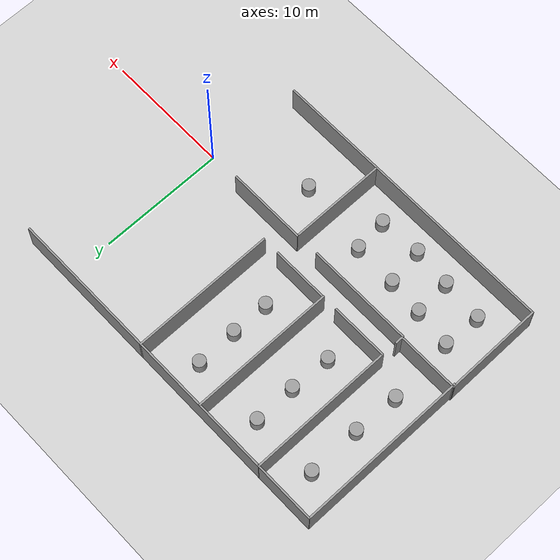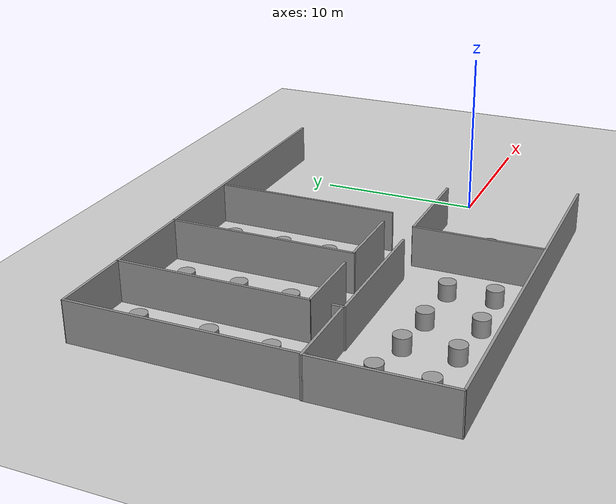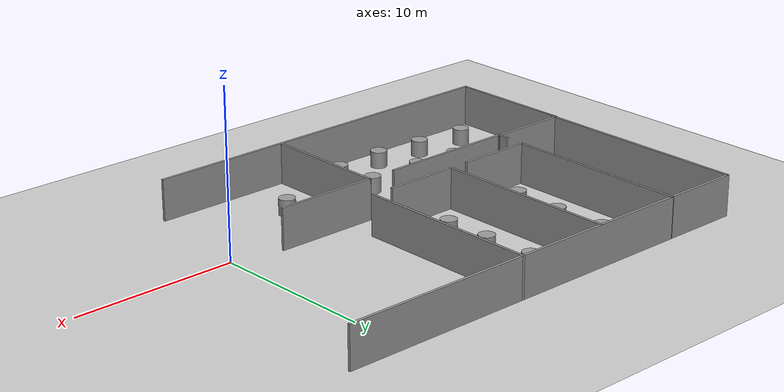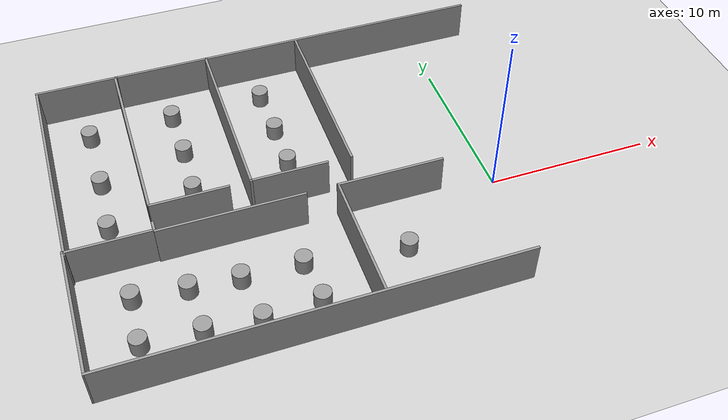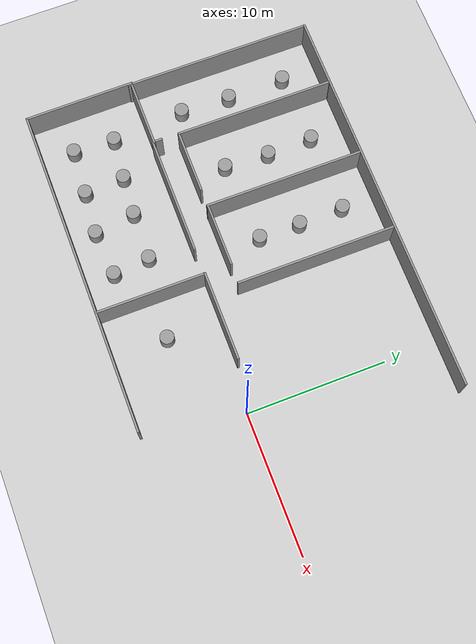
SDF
<sdf version="1.7">
 <world name="default">
  <model name="ground_plane">
   <static>1</static>
   <link name="link">
    <collision name="collision">
     <geometry><plane><normal>0 0 1</normal><size>100 100</size></plane></geometry>
     <surface>
      <contact><collide_bitmask>65535</collide_bitmask></contact>
      <friction><ode><mu>100</mu><mu2>50</mu2></ode></friction>
     </surface>
    </collision>
    <visual name="visual">
     <cast_shadows>0</cast_shadows>
     <geometry><plane><normal>0 0 1</normal><size>100 100</size></plane></geometry>
     <material>
      <script><uri>file://media/materials/scripts/gazebo.material</uri><name>Gazebo/Grey</name></script>
     </material>
    </visual>
   </link>
  </model>
  <model name="5th_v2">
   <link name="Wall_19">
    <pose>-13.9677 8.12089 0 0 0 -1.5708</pose>
    <visual name="Wall_19_Visual">
     <pose>0 0 1.25 0 -0 0</pose>
     <geometry><box><size>11.5 0.15 2.5</size></box></geometry>
     <material>
      <script><uri>file://media/materials/scripts/gazebo.material</uri><name>Gazebo/Grey</name></script>
      <ambient>1 1 1 1</ambient>
     </material>
     <meta><layer>0</layer></meta>
    </visual>
    <collision name="Wall_19_Collision">
     <pose>0 0 1.25 0 -0 0</pose>
     <geometry><box><size>11.5 0.15 2.5</size></box></geometry>
     <surface>
      <friction>
       <ode><mu>1</mu><mu2>1</mu2><fdir1>0 0 0</fdir1><slip1>0</slip1><slip2>0</slip2></ode>
       <torsional>
        <coefficient>1</coefficient>
        <patch_radius>0</patch_radius>
        <surface_radius>0</surface_radius>
        <use_patch_radius>1</use_patch_radius>
        <ode><slip>0</slip></ode>
       </torsional>
      </friction>
      <bounce><restitution_coefficient>0</restitution_coefficient><threshold>1e+06</threshold></bounce>
      <contact>
       <collide_without_contact>0</collide_without_contact>
       <collide_without_contact_bitmask>1</collide_without_contact_bitmask>
       <collide_bitmask>1</collide_bitmask>
       <ode>
        <soft_cfm>0</soft_cfm>
        <soft_erp>0.2</soft_erp>
        <kp>1e+13</kp>
        <kd>1</kd>
        <max_vel>0.01</max_vel>
        <min_depth>0</min_depth>
       </ode>
       <bullet>
        <split_impulse>1</split_impulse>
        <split_impulse_penetration_threshold>-0.01</split_impulse_penetration_threshold>
        <soft_cfm>0</soft_cfm>
        <soft_erp>0.2</soft_erp>
        <kp>1e+13</kp>
        <kd>1</kd>
       </bullet>
      </contact>
     </surface>
    </collision>
   </link>
   <link name="Wall_21">
    <pose>-8.03913 8.13641 0 0 -0 1.5708</pose>
    <visual name="Wall_21_Visual">
     <pose>0 0 1.25 0 -0 0</pose>
     <geometry><box><size>11.5 0.15 2.5</size></box></geometry>
     <material>
      <script><uri>file://media/materials/scripts/gazebo.material</uri><name>Gazebo/Grey</name></script>
      <ambient>1 1 1 1</ambient>
     </material>
     <meta><layer>0</layer></meta>
    </visual>
    <collision name="Wall_21_Collision">
     <pose>0 0 1.25 0 -0 0</pose>
     <geometry><box><size>11.5 0.15 2.5</size></box></geometry>
     <surface>
      <friction>
       <ode><mu>1</mu><mu2>1</mu2><fdir1>0 0 0</fdir1><slip1>0</slip1><slip2>0</slip2></ode>
       <torsional>
        <coefficient>1</coefficient>
        <patch_radius>0</patch_radius>
        <surface_radius>0</surface_radius>
        <use_patch_radius>1</use_patch_radius>
        <ode><slip>0</slip></ode>
       </torsional>
      </friction>
      <bounce><restitution_coefficient>0</restitution_coefficient><threshold>1e+06</threshold></bounce>
      <contact>
       <collide_without_contact>0</collide_without_contact>
       <collide_without_contact_bitmask>1</collide_without_contact_bitmask>
       <collide_bitmask>1</collide_bitmask>
       <ode>
        <soft_cfm>0</soft_cfm>
        <soft_erp>0.2</soft_erp>
        <kp>1e+13</kp>
        <kd>1</kd>
        <max_vel>0.01</max_vel>
        <min_depth>0</min_depth>
       </ode>
       <bullet>
        <split_impulse>1</split_impulse>
        <split_impulse_penetration_threshold>-0.01</split_impulse_penetration_threshold>
        <soft_cfm>0</soft_cfm>
        <soft_erp>0.2</soft_erp>
        <kp>1e+13</kp>
        <kd>1</kd>
       </bullet>
      </contact>
     </surface>
    </collision>
   </link>
   <link name="Wall_29">
    <pose>-19.7343 8.13641 0 0 -0 1.5708</pose>
    <visual name="Wall_29_Visual">
     <pose>0 0 1.25 0 -0 0</pose>
     <geometry><box><size>11.5 0.15 2.5</size></box></geometry>
     <material>
      <script><uri>file://media/materials/scripts/gazebo.material</uri><name>Gazebo/Grey</name></script>
      <ambient>1 1 1 1</ambient>
     </material>
     <meta><layer>0</layer></meta>
    </visual>
    <collision name="Wall_29_Collision">
     <pose>0 0 1.25 0 -0 0</pose>
     <geometry><box><size>11.5 0.15 2.5</size></box></geometry>
     <surface>
      <friction>
       <ode><mu>1</mu><mu2>1</mu2><fdir1>0 0 0</fdir1><slip1>0</slip1><slip2>0</slip2></ode>
       <torsional>
        <coefficient>1</coefficient>
        <patch_radius>0</patch_radius>
        <surface_radius>0</surface_radius>
        <use_patch_radius>1</use_patch_radius>
        <ode><slip>0</slip></ode>
       </torsional>
      </friction>
      <bounce><restitution_coefficient>0</restitution_coefficient><threshold>1e+06</threshold></bounce>
      <contact>
       <collide_without_contact>0</collide_without_contact>
       <collide_without_contact_bitmask>1</collide_without_contact_bitmask>
       <collide_bitmask>1</collide_bitmask>
       <ode>
        <soft_cfm>0</soft_cfm>
        <soft_erp>0.2</soft_erp>
        <kp>1e+13</kp>
        <kd>1</kd>
        <max_vel>0.01</max_vel>
        <min_depth>0</min_depth>
       </ode>
       <bullet>
        <split_impulse>1</split_impulse>
        <split_impulse_penetration_threshold>-0.01</split_impulse_penetration_threshold>
        <soft_cfm>0</soft_cfm>
        <soft_erp>0.2</soft_erp>
        <kp>1e+13</kp>
        <kd>1</kd>
       </bullet>
      </contact>
     </surface>
    </collision>
   </link>
   <link name="Wall_35">
    <pose>-19.7655 0.877576 0 0 0 -1.5708</pose>
    <inertial>
     <inertia><ixx>0</ixx><ixy>0</ixy><ixz>0</ixz><iyy>0</iyy><iyz>0</iyz><izz>0</izz></inertia>
     <mass>0</mass>
    </inertial>
    <visual name="Wall_35_Visual">
     <pose>0 0 1.25 0 -0 0</pose>
     <geometry><box><size>0.682332 0.15 2.5</size></box></geometry>
     <material>
      <script><uri>file://media/materials/scripts/gazebo.material</uri><name>Gazebo/Grey</name></script>
      <ambient>1 1 1 1</ambient>
     </material>
     <meta><layer>0</layer></meta>
    </visual>
    <collision name="Wall_35_Collision">
     <pose>0 0 1.25 0 -0 0</pose>
     <geometry><box><size>0.682332 0.15 2.5</size></box></geometry>
     <surface>
      <friction>
       <ode><mu>1</mu><mu2>1</mu2><fdir1>0 0 0</fdir1><slip1>0</slip1><slip2>0</slip2></ode>
       <torsional>
        <coefficient>1</coefficient>
        <patch_radius>0</patch_radius>
        <surface_radius>0</surface_radius>
        <use_patch_radius>1</use_patch_radius>
        <ode><slip>0</slip></ode>
       </torsional>
      </friction>
      <bounce><restitution_coefficient>0</restitution_coefficient><threshold>1e+06</threshold></bounce>
      <contact>
       <collide_without_contact>0</collide_without_contact>
       <collide_without_contact_bitmask>1</collide_without_contact_bitmask>
       <collide_bitmask>1</collide_bitmask>
       <ode>
        <soft_cfm>0</soft_cfm>
        <soft_erp>0.2</soft_erp>
        <kp>1e+13</kp>
        <kd>1</kd>
        <max_vel>0.01</max_vel>
        <min_depth>0</min_depth>
       </ode>
       <bullet>
        <split_impulse>1</split_impulse>
        <split_impulse_penetration_threshold>-0.01</split_impulse_penetration_threshold>
        <soft_cfm>0</soft_cfm>
        <soft_erp>0.2</soft_erp>
        <kp>1e+13</kp>
        <kd>1</kd>
       </bullet>
      </contact>
     </surface>
    </collision>
   </link>
   <link name="Wall_44">
    <pose>-15.5505 0.526898 0 0 -0 0</pose>
    <inertial>
     <inertia><ixx>0</ixx><ixy>0</ixy><ixz>0</ixz><iyy>0</iyy><iyz>0</iyz><izz>0</izz></inertia>
     <mass>0</mass>
    </inertial>
    <visual name="Wall_44_Visual">
     <pose>0 0 1.25 0 -0 0</pose>
     <geometry><box><size>8.51811 0.15 2.5</size></box></geometry>
     <material>
      <script><uri>file://media/materials/scripts/gazebo.material</uri><name>Gazebo/Grey</name></script>
      <ambient>1 1 1 1</ambient>
     </material>
     <meta><layer>0</layer></meta>
    </visual>
    <collision name="Wall_44_Collision">
     <pose>0 0 1.25 0 -0 0</pose>
     <geometry><box><size>8.51811 0.15 2.5</size></box></geometry>
     <surface>
      <friction>
       <ode><mu>1</mu><mu2>1</mu2><fdir1>0 0 0</fdir1><slip1>0</slip1><slip2>0</slip2></ode>
       <torsional>
        <coefficient>1</coefficient>
        <patch_radius>0</patch_radius>
        <surface_radius>0</surface_radius>
        <use_patch_radius>1</use_patch_radius>
        <ode><slip>0</slip></ode>
       </torsional>
      </friction>
      <bounce><restitution_coefficient>0</restitution_coefficient><threshold>1e+06</threshold></bounce>
      <contact>
       <collide_without_contact>0</collide_without_contact>
       <collide_without_contact_bitmask>1</collide_without_contact_bitmask>
       <collide_bitmask>1</collide_bitmask>
       <ode>
        <soft_cfm>0</soft_cfm>
        <soft_erp>0.2</soft_erp>
        <kp>1e+13</kp>
        <kd>1</kd>
        <max_vel>0.01</max_vel>
        <min_depth>0</min_depth>
       </ode>
       <bullet>
        <split_impulse>1</split_impulse>
        <split_impulse_penetration_threshold>-0.01</split_impulse_penetration_threshold>
        <soft_cfm>0</soft_cfm>
        <soft_erp>0.2</soft_erp>
        <kp>1e+13</kp>
        <kd>1</kd>
       </bullet>
      </contact>
     </surface>
    </collision>
   </link>
   <link name="Wall_44_clone">
    <pose>-6.31009 0.581662 0 0 -0 0</pose>
    <inertial>
     <inertia><ixx>0</ixx><ixy>0</ixy><ixz>0</ixz><iyy>0</iyy><iyz>0</iyz><izz>0</izz></inertia>
     <mass>0</mass>
    </inertial>
    <visual name="Wall_44_Visual">
     <pose>0 0 1.25 0 -0 0</pose>
     <geometry><box><size>6.36505 0.15 2.5</size></box></geometry>
     <material>
      <script><uri>file://media/materials/scripts/gazebo.material</uri><name>Gazebo/Grey</name></script>
      <ambient>1 1 1 1</ambient>
      <shader type="pixel"/>
     </material>
     <meta><layer>0</layer></meta>
    </visual>
    <collision name="Wall_44_Collision">
     <pose>0 0 1.25 0 -0 0</pose>
     <geometry><box><size>6.36505 0.15 2.5</size></box></geometry>
     <surface>
      <friction>
       <ode><mu>1</mu><mu2>1</mu2><fdir1>0 0 0</fdir1><slip1>0</slip1><slip2>0</slip2></ode>
       <torsional>
        <coefficient>1</coefficient>
        <patch_radius>0</patch_radius>
        <surface_radius>0</surface_radius>
        <use_patch_radius>1</use_patch_radius>
        <ode><slip>0</slip></ode>
       </torsional>
      </friction>
      <bounce><restitution_coefficient>0</restitution_coefficient><threshold>1e+06</threshold></bounce>
      <contact>
       <collide_without_contact>0</collide_without_contact>
       <collide_without_contact_bitmask>1</collide_without_contact_bitmask>
       <collide_bitmask>1</collide_bitmask>
       <ode>
        <soft_cfm>0</soft_cfm>
        <soft_erp>0.2</soft_erp>
        <kp>1e+13</kp>
        <kd>1</kd>
        <max_vel>0.01</max_vel>
        <min_depth>0</min_depth>
       </ode>
       <bullet>
        <split_impulse>1</split_impulse>
        <split_impulse_penetration_threshold>-0.01</split_impulse_penetration_threshold>
        <soft_cfm>0</soft_cfm>
        <soft_erp>0.2</soft_erp>
        <kp>1e+13</kp>
        <kd>1</kd>
       </bullet>
      </contact>
     </surface>
    </collision>
   </link>
   <link name="Wall_48">
    <pose>-8.00928 13.8114 0 0 -0 3.14159</pose>
    <visual name="Wall_48_Visual">
     <pose>0 0 1.25 0 -0 0</pose>
     <geometry><box><size>23.5 0.15 2.5</size></box></geometry>
     <material>
      <script><uri>file://media/materials/scripts/gazebo.material</uri><name>Gazebo/Grey</name></script>
      <ambient>1 1 1 1</ambient>
     </material>
     <meta><layer>0</layer></meta>
    </visual>
    <collision name="Wall_48_Collision">
     <pose>0 0 1.25 0 -0 0</pose>
     <geometry><box><size>23.5 0.15 2.5</size></box></geometry>
     <surface>
      <friction>
       <ode><mu>1</mu><mu2>1</mu2><fdir1>0 0 0</fdir1><slip1>0</slip1><slip2>0</slip2></ode>
       <torsional>
        <coefficient>1</coefficient>
        <patch_radius>0</patch_radius>
        <surface_radius>0</surface_radius>
        <use_patch_radius>1</use_patch_radius>
        <ode><slip>0</slip></ode>
       </torsional>
      </friction>
      <bounce><restitution_coefficient>0</restitution_coefficient><threshold>1e+06</threshold></bounce>
      <contact>
       <collide_without_contact>0</collide_without_contact>
       <collide_without_contact_bitmask>1</collide_without_contact_bitmask>
       <collide_bitmask>1</collide_bitmask>
       <ode>
        <soft_cfm>0</soft_cfm>
        <soft_erp>0.2</soft_erp>
        <kp>1e+13</kp>
        <kd>1</kd>
        <max_vel>0.01</max_vel>
        <min_depth>0</min_depth>
       </ode>
       <bullet>
        <split_impulse>1</split_impulse>
        <split_impulse_penetration_threshold>-0.01</split_impulse_penetration_threshold>
        <soft_cfm>0</soft_cfm>
        <soft_erp>0.2</soft_erp>
        <kp>1e+13</kp>
        <kd>1</kd>
       </bullet>
      </contact>
     </surface>
    </collision>
   </link>
   <link name="Wall_49">
    <pose>-22.1093 13.8114 0 0 -0 3.14159</pose>
    <visual name="Wall_49_Visual">
     <pose>0 0 1.25 0 -0 0</pose>
     <geometry><box><size>5 0.15 2.5</size></box></geometry>
     <material>
      <script><uri>file://media/materials/scripts/gazebo.material</uri><name>Gazebo/Grey</name></script>
      <ambient>1 1 1 1</ambient>
     </material>
     <meta><layer>0</layer></meta>
    </visual>
    <collision name="Wall_49_Collision">
     <pose>0 0 1.25 0 -0 0</pose>
     <geometry><box><size>5 0.15 2.5</size></box></geometry>
     <surface>
      <friction>
       <ode><mu>1</mu><mu2>1</mu2><fdir1>0 0 0</fdir1><slip1>0</slip1><slip2>0</slip2></ode>
       <torsional>
        <coefficient>1</coefficient>
        <patch_radius>0</patch_radius>
        <surface_radius>0</surface_radius>
        <use_patch_radius>1</use_patch_radius>
        <ode><slip>0</slip></ode>
       </torsional>
      </friction>
      <bounce><restitution_coefficient>0</restitution_coefficient><threshold>1e+06</threshold></bounce>
      <contact>
       <collide_without_contact>0</collide_without_contact>
       <collide_without_contact_bitmask>1</collide_without_contact_bitmask>
       <collide_bitmask>1</collide_bitmask>
       <ode>
        <soft_cfm>0</soft_cfm>
        <soft_erp>0.2</soft_erp>
        <kp>1e+13</kp>
        <kd>1</kd>
        <max_vel>0.01</max_vel>
        <min_depth>0</min_depth>
       </ode>
       <bullet>
        <split_impulse>1</split_impulse>
        <split_impulse_penetration_threshold>-0.01</split_impulse_penetration_threshold>
        <soft_cfm>0</soft_cfm>
        <soft_erp>0.2</soft_erp>
        <kp>1e+13</kp>
        <kd>1</kd>
       </bullet>
      </contact>
     </surface>
    </collision>
   </link>
   <link name="Wall_53">
    <pose>-24.5383 7.10119 0 0 -0 1.5708</pose>
    <visual name="Wall_53_Visual">
     <pose>0 0 1.25 0 -0 0</pose>
     <geometry><box><size>13.5 0.15 2.5</size></box></geometry>
     <material>
      <script><uri>file://media/materials/scripts/gazebo.material</uri><name>Gazebo/Grey</name></script>
      <ambient>1 1 1 1</ambient>
     </material>
     <meta><layer>0</layer></meta>
    </visual>
    <collision name="Wall_53_Collision">
     <pose>0 0 1.25 0 -0 0</pose>
     <geometry><box><size>13.5 0.15 2.5</size></box></geometry>
     <surface>
      <friction>
       <ode><mu>1</mu><mu2>1</mu2><fdir1>0 0 0</fdir1><slip1>0</slip1><slip2>0</slip2></ode>
       <torsional>
        <coefficient>1</coefficient>
        <patch_radius>0</patch_radius>
        <surface_radius>0</surface_radius>
        <use_patch_radius>1</use_patch_radius>
        <ode><slip>0</slip></ode>
       </torsional>
      </friction>
      <bounce><restitution_coefficient>0</restitution_coefficient><threshold>1e+06</threshold></bounce>
      <contact>
       <collide_without_contact>0</collide_without_contact>
       <collide_without_contact_bitmask>1</collide_without_contact_bitmask>
       <collide_bitmask>1</collide_bitmask>
       <ode>
        <soft_cfm>0</soft_cfm>
        <soft_erp>0.2</soft_erp>
        <kp>1e+13</kp>
        <kd>1</kd>
        <max_vel>0.01</max_vel>
        <min_depth>0</min_depth>
       </ode>
       <bullet>
        <split_impulse>1</split_impulse>
        <split_impulse_penetration_threshold>-0.01</split_impulse_penetration_threshold>
        <soft_cfm>0</soft_cfm>
        <soft_erp>0.2</soft_erp>
        <kp>1e+13</kp>
        <kd>1</kd>
       </bullet>
      </contact>
     </surface>
    </collision>
   </link>
   <link name="Wall_56">
    <pose>-22.1746 0.611408 0 0 -0 3.14159</pose>
    <visual name="Wall_56_Visual">
     <pose>0 0 1.25 0 -0 0</pose>
     <geometry><box><size>5.03059 0.15 2.5</size></box></geometry>
     <material>
      <script><uri>file://media/materials/scripts/gazebo.material</uri><name>Gazebo/Grey</name></script>
      <ambient>1 1 1 1</ambient>
     </material>
     <meta><layer>0</layer></meta>
    </visual>
    <collision name="Wall_56_Collision">
     <pose>0 0 1.25 0 -0 0</pose>
     <geometry><box><size>5.03059 0.15 2.5</size></box></geometry>
     <surface>
      <friction>
       <ode><mu>1</mu><mu2>1</mu2><fdir1>0 0 0</fdir1><slip1>0</slip1><slip2>0</slip2></ode>
       <torsional>
        <coefficient>1</coefficient>
        <patch_radius>0</patch_radius>
        <surface_radius>0</surface_radius>
        <use_patch_radius>1</use_patch_radius>
        <ode><slip>0</slip></ode>
       </torsional>
      </friction>
      <bounce><restitution_coefficient>0</restitution_coefficient><threshold>1e+06</threshold></bounce>
      <contact>
       <collide_without_contact>0</collide_without_contact>
       <collide_without_contact_bitmask>1</collide_without_contact_bitmask>
       <collide_bitmask>1</collide_bitmask>
       <ode>
        <soft_cfm>0</soft_cfm>
        <soft_erp>0.2</soft_erp>
        <kp>1e+13</kp>
        <kd>1</kd>
        <max_vel>0.01</max_vel>
        <min_depth>0</min_depth>
       </ode>
       <bullet>
        <split_impulse>1</split_impulse>
        <split_impulse_penetration_threshold>-0.01</split_impulse_penetration_threshold>
        <soft_cfm>0</soft_cfm>
        <soft_erp>0.2</soft_erp>
        <kp>1e+13</kp>
        <kd>1</kd>
       </bullet>
      </contact>
     </surface>
    </collision>
   </link>
   <link name="Wall_62_clone_1">
    <pose>-11.7054 2.46487 0 0 0 -3.14155</pose>
    <inertial>
     <inertia><ixx>0</ixx><ixy>0</ixy><ixz>0</ixz><iyy>0</iyy><iyz>0</iyz><izz>0</izz></inertia>
     <mass>0</mass>
    </inertial>
    <visual name="Wall_62_Visual">
     <pose>0 0 1.25 0 -0 0</pose>
     <geometry><box><size>4.57764 0.15 2.5</size></box></geometry>
     <material>
      <script><uri>file://media/materials/scripts/gazebo.material</uri><name>Gazebo/Grey</name></script>
      <ambient>1 1 1 1</ambient>
      <shader type="pixel"/>
     </material>
     <meta><layer>0</layer></meta>
    </visual>
    <collision name="Wall_62_Collision">
     <pose>0 0 1.25 0 -0 0</pose>
     <geometry><box><size>4.57764 0.15 2.5</size></box></geometry>
     <surface>
      <friction>
       <ode><mu>1</mu><mu2>1</mu2><fdir1>0 0 0</fdir1><slip1>0</slip1><slip2>0</slip2></ode>
       <torsional>
        <coefficient>1</coefficient>
        <patch_radius>0</patch_radius>
        <surface_radius>0</surface_radius>
        <use_patch_radius>1</use_patch_radius>
        <ode><slip>0</slip></ode>
       </torsional>
      </friction>
      <bounce><restitution_coefficient>0</restitution_coefficient><threshold>1e+06</threshold></bounce>
      <contact>
       <collide_without_contact>0</collide_without_contact>
       <collide_without_contact_bitmask>1</collide_without_contact_bitmask>
       <collide_bitmask>1</collide_bitmask>
       <ode>
        <soft_cfm>0</soft_cfm>
        <soft_erp>0.2</soft_erp>
        <kp>1e+13</kp>
        <kd>1</kd>
        <max_vel>0.01</max_vel>
        <min_depth>0</min_depth>
       </ode>
       <bullet>
        <split_impulse>1</split_impulse>
        <split_impulse_penetration_threshold>-0.01</split_impulse_penetration_threshold>
        <soft_cfm>0</soft_cfm>
        <soft_erp>0.2</soft_erp>
        <kp>1e+13</kp>
        <kd>1</kd>
       </bullet>
      </contact>
     </surface>
    </collision>
   </link>
   <link name="Wall_62_clone_2">
    <pose>-17.4781 2.43865 0 0 0 -3.14155</pose>
    <inertial>
     <inertia><ixx>0</ixx><ixy>0</ixy><ixz>0</ixz><iyy>0</iyy><iyz>0</iyz><izz>0</izz></inertia>
     <mass>0</mass>
    </inertial>
    <visual name="Wall_62_Visual">
     <pose>0 0 1.25 0 -0 0</pose>
     <geometry><box><size>4.57764 0.15 2.5</size></box></geometry>
     <material>
      <script><uri>file://media/materials/scripts/gazebo.material</uri><name>Gazebo/Grey</name></script>
      <ambient>1 1 1 1</ambient>
      <shader type="pixel"/>
     </material>
     <meta><layer>0</layer></meta>
    </visual>
    <collision name="Wall_62_Collision">
     <pose>0 0 1.25 0 -0 0</pose>
     <geometry><box><size>4.57764 0.15 2.5</size></box></geometry>
     <surface>
      <friction>
       <ode><mu>1</mu><mu2>1</mu2><fdir1>0 0 0</fdir1><slip1>0</slip1><slip2>0</slip2></ode>
       <torsional>
        <coefficient>1</coefficient>
        <patch_radius>0</patch_radius>
        <surface_radius>0</surface_radius>
        <use_patch_radius>1</use_patch_radius>
        <ode><slip>0</slip></ode>
       </torsional>
      </friction>
      <bounce><restitution_coefficient>0</restitution_coefficient><threshold>1e+06</threshold></bounce>
      <contact>
       <collide_without_contact>0</collide_without_contact>
       <collide_without_contact_bitmask>1</collide_without_contact_bitmask>
       <collide_bitmask>1</collide_bitmask>
       <ode>
        <soft_cfm>0</soft_cfm>
        <soft_erp>0.2</soft_erp>
        <kp>1e+13</kp>
        <kd>1</kd>
        <max_vel>0.01</max_vel>
        <min_depth>0</min_depth>
       </ode>
       <bullet>
        <split_impulse>1</split_impulse>
        <split_impulse_penetration_threshold>-0.01</split_impulse_penetration_threshold>
        <soft_cfm>0</soft_cfm>
        <soft_erp>0.2</soft_erp>
        <kp>1e+13</kp>
        <kd>1</kd>
       </bullet>
      </contact>
     </surface>
    </collision>
   </link>
   <link name="Wall_81">
    <pose>-12.7538 -7.1375 0 0 -0 3.14159</pose>
    <visual name="Wall_81_Visual">
     <pose>0 0 1.25 0 -0 0</pose>
     <geometry><box><size>23.75 0.15 2.5</size></box></geometry>
     <material>
      <script><uri>file://media/materials/scripts/gazebo.material</uri><name>Gazebo/Grey</name></script>
      <ambient>1 1 1 1</ambient>
     </material>
     <meta><layer>0</layer></meta>
    </visual>
    <collision name="Wall_81_Collision">
     <pose>0 0 1.25 0 -0 0</pose>
     <geometry><box><size>23.75 0.15 2.5</size></box></geometry>
     <surface>
      <friction>
       <ode><mu>1</mu><mu2>1</mu2><fdir1>0 0 0</fdir1><slip1>0</slip1><slip2>0</slip2></ode>
       <torsional>
        <coefficient>1</coefficient>
        <patch_radius>0</patch_radius>
        <surface_radius>0</surface_radius>
        <use_patch_radius>1</use_patch_radius>
        <ode><slip>0</slip></ode>
       </torsional>
      </friction>
      <bounce><restitution_coefficient>0</restitution_coefficient><threshold>1e+06</threshold></bounce>
      <contact>
       <collide_without_contact>0</collide_without_contact>
       <collide_without_contact_bitmask>1</collide_without_contact_bitmask>
       <collide_bitmask>1</collide_bitmask>
       <ode>
        <soft_cfm>0</soft_cfm>
        <soft_erp>0.2</soft_erp>
        <kp>1e+13</kp>
        <kd>1</kd>
        <max_vel>0.01</max_vel>
        <min_depth>0</min_depth>
       </ode>
       <bullet>
        <split_impulse>1</split_impulse>
        <split_impulse_penetration_threshold>-0.01</split_impulse_penetration_threshold>
        <soft_cfm>0</soft_cfm>
        <soft_erp>0.2</soft_erp>
        <kp>1e+13</kp>
        <kd>1</kd>
       </bullet>
      </contact>
     </surface>
    </collision>
   </link>
   <link name="Wall_83">
    <pose>-9.44345 -3.24114 0 0 0 -1.5708</pose>
    <visual name="Wall_83_Visual">
     <pose>0 0 1.25 0 -0 0</pose>
     <geometry><box><size>7.75 0.15 2.5</size></box></geometry>
     <material>
      <script><uri>file://media/materials/scripts/gazebo.material</uri><name>Gazebo/Grey</name></script>
      <ambient>1 1 1 1</ambient>
     </material>
     <meta><layer>0</layer></meta>
    </visual>
    <collision name="Wall_83_Collision">
     <pose>0 0 1.25 0 -0 0</pose>
     <geometry><box><size>7.75 0.15 2.5</size></box></geometry>
     <surface>
      <friction>
       <ode><mu>1</mu><mu2>1</mu2><fdir1>0 0 0</fdir1><slip1>0</slip1><slip2>0</slip2></ode>
       <torsional>
        <coefficient>1</coefficient>
        <patch_radius>0</patch_radius>
        <surface_radius>0</surface_radius>
        <use_patch_radius>1</use_patch_radius>
        <ode><slip>0</slip></ode>
       </torsional>
      </friction>
      <bounce><restitution_coefficient>0</restitution_coefficient><threshold>1e+06</threshold></bounce>
      <contact>
       <collide_without_contact>0</collide_without_contact>
       <collide_without_contact_bitmask>1</collide_without_contact_bitmask>
       <collide_bitmask>1</collide_bitmask>
       <ode>
        <soft_cfm>0</soft_cfm>
        <soft_erp>0.2</soft_erp>
        <kp>1e+13</kp>
        <kd>1</kd>
        <max_vel>0.01</max_vel>
        <min_depth>0</min_depth>
       </ode>
       <bullet>
        <split_impulse>1</split_impulse>
        <split_impulse_penetration_threshold>-0.01</split_impulse_penetration_threshold>
        <soft_cfm>0</soft_cfm>
        <soft_erp>0.2</soft_erp>
        <kp>1e+13</kp>
        <kd>1</kd>
       </bullet>
      </contact>
     </surface>
    </collision>
   </link>
   <link name="Wall_85">
    <pose>-24.5844 -3.26305 0 0 0 -1.56292</pose>
    <visual name="Wall_85_Visual">
     <pose>0 0 1.25 0 -0 0</pose>
     <geometry><box><size>7.89915 0.15 2.5</size></box></geometry>
     <material>
      <script><uri>file://media/materials/scripts/gazebo.material</uri><name>Gazebo/Grey</name></script>
      <ambient>1 1 1 1</ambient>
     </material>
     <meta><layer>0</layer></meta>
    </visual>
    <collision name="Wall_85_Collision">
     <pose>0 0 1.25 0 -0 0</pose>
     <geometry><box><size>7.89915 0.15 2.5</size></box></geometry>
     <surface>
      <friction>
       <ode><mu>1</mu><mu2>1</mu2><fdir1>0 0 0</fdir1><slip1>0</slip1><slip2>0</slip2></ode>
       <torsional>
        <coefficient>1</coefficient>
        <patch_radius>0</patch_radius>
        <surface_radius>0</surface_radius>
        <use_patch_radius>1</use_patch_radius>
        <ode><slip>0</slip></ode>
       </torsional>
      </friction>
      <bounce><restitution_coefficient>0</restitution_coefficient><threshold>1e+06</threshold></bounce>
      <contact>
       <collide_without_contact>0</collide_without_contact>
       <collide_without_contact_bitmask>1</collide_without_contact_bitmask>
       <collide_bitmask>1</collide_bitmask>
       <ode>
        <soft_cfm>0</soft_cfm>
        <soft_erp>0.2</soft_erp>
        <kp>1e+13</kp>
        <kd>1</kd>
        <max_vel>0.01</max_vel>
        <min_depth>0</min_depth>
       </ode>
       <bullet>
        <split_impulse>1</split_impulse>
        <split_impulse_penetration_threshold>-0.01</split_impulse_penetration_threshold>
        <soft_cfm>0</soft_cfm>
        <soft_erp>0.2</soft_erp>
        <kp>1e+13</kp>
        <kd>1</kd>
       </bullet>
      </contact>
     </surface>
    </collision>
   </link>
   <static>1</static>
  </model>
  <model name="unit_cylinder">
   <pose>-22.017 11.1478 0.499993 -4e-06 -3e-06 -0</pose>
   <link name="link">
    <inertial>
     <mass>1</mass>
     <inertia><ixx>0.145833</ixx><ixy>0</ixy><ixz>0</ixz><iyy>0.145833</iyy><iyz>0</iyz><izz>0.125</izz></inertia>
    </inertial>
    <collision name="collision">
     <geometry><cylinder><radius>0.5</radius><length>1</length></cylinder></geometry>
    </collision>
    <visual name="visual">
     <geometry><cylinder><radius>0.5</radius><length>1</length></cylinder></geometry>
     <material>
      <script><name>Gazebo/Grey</name><uri>file://media/materials/scripts/gazebo.material</uri></script>
     </material>
    </visual>
   </link>
  </model>
  <model name="unit_cylinder_clone">
   <pose>-22 7 0.499996 4e-06 3e-06 -0</pose>
   <link name="link">
    <inertial>
     <mass>1</mass>
     <inertia><ixx>0.145833</ixx><ixy>0</ixy><ixz>0</ixz><iyy>0.145833</iyy><iyz>0</iyz><izz>0.125</izz></inertia>
    </inertial>
    <collision name="collision">
     <geometry><cylinder><radius>0.5</radius><length>1</length></cylinder></geometry>
    </collision>
    <visual name="visual">
     <geometry><cylinder><radius>0.5</radius><length>1</length></cylinder></geometry>
     <material>
      <script><name>Gazebo/Grey</name><uri>file://media/materials/scripts/gazebo.material</uri></script>
     </material>
    </visual>
   </link>
  </model>
  <model name="unit_cylinder_clone_0">
   <pose>-22.1425 3.43046 0.499993 -4e-06 -3e-06 -0</pose>
   <link name="link">
    <inertial>
     <mass>1</mass>
     <inertia><ixx>0.145833</ixx><ixy>0</ixy><ixz>0</ixz><iyy>0.145833</iyy><iyz>0</iyz><izz>0.125</izz></inertia>
    </inertial>
    <collision name="collision">
     <geometry><cylinder><radius>0.5</radius><length>1</length></cylinder></geometry>
    </collision>
    <visual name="visual">
     <geometry><cylinder><radius>0.5</radius><length>1</length></cylinder></geometry>
     <material>
      <script><name>Gazebo/Grey</name><uri>file://media/materials/scripts/gazebo.material</uri></script>
     </material>
    </visual>
   </link>
  </model>
  <model name="unit_cylinder_clone_1">
   <pose>-16.8978 11.3468 0.499993 -4e-06 -3e-06 -0</pose>
   <link name="link">
    <inertial>
     <mass>1</mass>
     <inertia><ixx>0.145833</ixx><ixy>0</ixy><ixz>0</ixz><iyy>0.145833</iyy><iyz>0</iyz><izz>0.125</izz></inertia>
    </inertial>
    <collision name="collision">
     <geometry><cylinder><radius>0.5</radius><length>1</length></cylinder></geometry>
    </collision>
    <visual name="visual">
     <geometry><cylinder><radius>0.5</radius><length>1</length></cylinder></geometry>
     <material>
      <script><name>Gazebo/Grey</name><uri>file://media/materials/scripts/gazebo.material</uri></script>
     </material>
    </visual>
   </link>
  </model>
  <model name="unit_cylinder_clone_2">
   <pose>-16.8473 8.04862 0.499996 4e-06 3e-06 -0</pose>
   <link name="link">
    <inertial>
     <mass>1</mass>
     <inertia><ixx>0.145833</ixx><ixy>0</ixy><ixz>0</ixz><iyy>0.145833</iyy><iyz>0</iyz><izz>0.125</izz></inertia>
    </inertial>
    <collision name="collision">
     <geometry><cylinder><radius>0.5</radius><length>1</length></cylinder></geometry>
    </collision>
    <visual name="visual">
     <geometry><cylinder><radius>0.5</radius><length>1</length></cylinder></geometry>
     <material>
      <script><name>Gazebo/Grey</name><uri>file://media/materials/scripts/gazebo.material</uri></script>
     </material>
    </visual>
   </link>
  </model>
  <model name="unit_cylinder_clone_3">
   <pose>-16.9904 4.83906 0.499993 -4e-06 -3e-06 -0</pose>
   <link name="link">
    <inertial>
     <mass>1</mass>
     <inertia><ixx>0.145833</ixx><ixy>0</ixy><ixz>0</ixz><iyy>0.145833</iyy><iyz>0</iyz><izz>0.125</izz></inertia>
    </inertial>
    <collision name="collision">
     <geometry><cylinder><radius>0.5</radius><length>1</length></cylinder></geometry>
    </collision>
    <visual name="visual">
     <geometry><cylinder><radius>0.5</radius><length>1</length></cylinder></geometry>
     <material>
      <script><name>Gazebo/Grey</name><uri>file://media/materials/scripts/gazebo.material</uri></script>
     </material>
    </visual>
   </link>
  </model>
  <model name="unit_cylinder_clone_4">
   <pose>-21.8706 -4.80372 0.499993 -4e-06 -3e-06 -0</pose>
   <link name="link">
    <inertial>
     <mass>1</mass>
     <inertia><ixx>0.145833</ixx><ixy>0</ixy><ixz>0</ixz><iyy>0.145833</iyy><iyz>0</iyz><izz>0.125</izz></inertia>
    </inertial>
    <collision name="collision">
     <geometry><cylinder><radius>0.5</radius><length>1</length></cylinder></geometry>
    </collision>
    <visual name="visual">
     <geometry><cylinder><radius>0.5</radius><length>1</length></cylinder></geometry>
     <material>
      <script><name>Gazebo/Grey</name><uri>file://media/materials/scripts/gazebo.material</uri></script>
     </material>
    </visual>
   </link>
  </model>
  <model name="unit_cylinder_clone_5">
   <pose>-21.751 -1.83885 0.499993 -4e-06 -3e-06 -0</pose>
   <link name="link">
    <inertial>
     <mass>1</mass>
     <inertia><ixx>0.145833</ixx><ixy>0</ixy><ixz>0</ixz><iyy>0.145833</iyy><iyz>0</iyz><izz>0.125</izz></inertia>
    </inertial>
    <collision name="collision">
     <geometry><cylinder><radius>0.5</radius><length>1</length></cylinder></geometry>
    </collision>
    <visual name="visual">
     <geometry><cylinder><radius>0.5</radius><length>1</length></cylinder></geometry>
     <material>
      <script><name>Gazebo/Grey</name><uri>file://media/materials/scripts/gazebo.material</uri></script>
     </material>
    </visual>
   </link>
  </model>
  <model name="unit_cylinder_clone_6">
   <pose>-18.5892 -5.05223 0.499996 4e-06 3e-06 -0</pose>
   <link name="link">
    <inertial>
     <mass>1</mass>
     <inertia><ixx>0.145833</ixx><ixy>0</ixy><ixz>0</ixz><iyy>0.145833</iyy><iyz>0</iyz><izz>0.125</izz></inertia>
    </inertial>
    <collision name="collision">
     <geometry><cylinder><radius>0.5</radius><length>1</length></cylinder></geometry>
    </collision>
    <visual name="visual">
     <geometry><cylinder><radius>0.5</radius><length>1</length></cylinder></geometry>
     <material>
      <script><name>Gazebo/Grey</name><uri>file://media/materials/scripts/gazebo.material</uri></script>
     </material>
    </visual>
   </link>
  </model>
  <model name="unit_cylinder_clone_8">
   <pose>-15.5009 -5.33679 0.499996 4e-06 4e-06 -0</pose>
   <link name="link">
    <inertial>
     <mass>1</mass>
     <inertia><ixx>0.145833</ixx><ixy>0</ixy><ixz>0</ixz><iyy>0.145833</iyy><iyz>0</iyz><izz>0.125</izz></inertia>
    </inertial>
    <collision name="collision">
     <geometry><cylinder><radius>0.5</radius><length>1</length></cylinder></geometry>
    </collision>
    <visual name="visual">
     <geometry><cylinder><radius>0.5</radius><length>1</length></cylinder></geometry>
     <material>
      <script><name>Gazebo/Grey</name><uri>file://media/materials/scripts/gazebo.material</uri></script>
     </material>
    </visual>
   </link>
  </model>
  <model name="unit_cylinder_clone_9">
   <pose>-15.9276 -2.39807 0.499993 -4e-06 -4e-06 -0</pose>
   <link name="link">
    <inertial>
     <mass>1</mass>
     <inertia><ixx>0.145833</ixx><ixy>0</ixy><ixz>0</ixz><iyy>0.145833</iyy><iyz>0</iyz><izz>0.125</izz></inertia>
    </inertial>
    <collision name="collision">
     <geometry><cylinder><radius>0.5</radius><length>1</length></cylinder></geometry>
    </collision>
    <visual name="visual">
     <geometry><cylinder><radius>0.5</radius><length>1</length></cylinder></geometry>
     <material>
      <script><name>Gazebo/Grey</name><uri>file://media/materials/scripts/gazebo.material</uri></script>
     </material>
    </visual>
   </link>
  </model>
  <model name="unit_cylinder_clone_10">
   <pose>-12.2091 -5.12697 0.499992 -3e-06 4e-06 0</pose>
   <link name="link">
    <inertial>
     <mass>1</mass>
     <inertia><ixx>0.145833</ixx><ixy>0</ixy><ixz>0</ixz><iyy>0.145833</iyy><iyz>0</iyz><izz>0.125</izz></inertia>
    </inertial>
    <collision name="collision">
     <geometry><cylinder><radius>0.5</radius><length>1</length></cylinder></geometry>
    </collision>
    <visual name="visual">
     <geometry><cylinder><radius>0.5</radius><length>1</length></cylinder></geometry>
     <material>
      <script><name>Gazebo/Grey</name><uri>file://media/materials/scripts/gazebo.material</uri></script>
     </material>
    </visual>
   </link>
  </model>
  <model name="unit_cylinder_clone_11">
   <pose>-12.4605 -2.49755 0.499998 3e-06 4e-06 -0</pose>
   <link name="link">
    <inertial>
     <mass>1</mass>
     <inertia><ixx>0.145833</ixx><ixy>0</ixy><ixz>0</ixz><iyy>0.145833</iyy><iyz>0</iyz><izz>0.125</izz></inertia>
    </inertial>
    <collision name="collision">
     <geometry><cylinder><radius>0.5</radius><length>1</length></cylinder></geometry>
    </collision>
    <visual name="visual">
     <geometry><cylinder><radius>0.5</radius><length>1</length></cylinder></geometry>
     <material>
      <script><name>Gazebo/Grey</name><uri>file://media/materials/scripts/gazebo.material</uri></script>
     </material>
    </visual>
   </link>
  </model>
  <model name="unit_cylinder_clone_12">
   <pose>-11.1441 5.20766 0.499992 -3e-06 4e-06 0</pose>
   <link name="link">
    <inertial>
     <mass>1</mass>
     <inertia><ixx>0.145833</ixx><ixy>0</ixy><ixz>0</ixz><iyy>0.145833</iyy><iyz>0</iyz><izz>0.125</izz></inertia>
    </inertial>
    <collision name="collision">
     <geometry><cylinder><radius>0.5</radius><length>1</length></cylinder></geometry>
    </collision>
    <visual name="visual">
     <geometry><cylinder><radius>0.5</radius><length>1</length></cylinder></geometry>
     <material>
      <script><name>Gazebo/Grey</name><uri>file://media/materials/scripts/gazebo.material</uri></script>
     </material>
    </visual>
   </link>
  </model>
  <model name="unit_cylinder_clone_13">
   <pose>-11.1195 8.17556 0.499992 -3e-06 4e-06 0</pose>
   <link name="link">
    <inertial>
     <mass>1</mass>
     <inertia><ixx>0.145833</ixx><ixy>0</ixy><ixz>0</ixz><iyy>0.145833</iyy><iyz>0</iyz><izz>0.125</izz></inertia>
    </inertial>
    <collision name="collision">
     <geometry><cylinder><radius>0.5</radius><length>1</length></cylinder></geometry>
    </collision>
    <visual name="visual">
     <geometry><cylinder><radius>0.5</radius><length>1</length></cylinder></geometry>
     <material>
      <script><name>Gazebo/Grey</name><uri>file://media/materials/scripts/gazebo.material</uri></script>
     </material>
    </visual>
   </link>
  </model>
  <model name="unit_cylinder_clone_14">
   <pose>-11.1777 11.4146 0.499998 3e-06 4e-06 -0</pose>
   <link name="link">
    <inertial>
     <mass>1</mass>
     <inertia><ixx>0.145833</ixx><ixy>0</ixy><ixz>0</ixz><iyy>0.145833</iyy><iyz>0</iyz><izz>0.125</izz></inertia>
    </inertial>
    <collision name="collision">
     <geometry><cylinder><radius>0.5</radius><length>1</length></cylinder></geometry>
    </collision>
    <visual name="visual">
     <geometry><cylinder><radius>0.5</radius><length>1</length></cylinder></geometry>
     <material>
      <script><name>Gazebo/Grey</name><uri>file://media/materials/scripts/gazebo.material</uri></script>
     </material>
    </visual>
   </link>
  </model>
  <model name="unit_cylinder_clone_18">
   <pose>-6.61396 -3.23635 0.499994 -4e-06 -4e-06 -0</pose>
   <link name="link">
    <inertial>
     <mass>1</mass>
     <inertia><ixx>0.145833</ixx><ixy>0</ixy><ixz>0</ixz><iyy>0.145833</iyy><iyz>0</iyz><izz>0.125</izz></inertia>
    </inertial>
    <collision name="collision">
     <geometry><cylinder><radius>0.5</radius><length>1</length></cylinder></geometry>
    </collision>
    <visual name="visual">
     <geometry><cylinder><radius>0.5</radius><length>1</length></cylinder></geometry>
     <material>
      <script><name>Gazebo/Grey</name><uri>file://media/materials/scripts/gazebo.material</uri></script>
     </material>
    </visual>
   </link>
  </model>
  <model name="unit_cylinder_clone_0_clone">
   <pose>-18.758 -2.16883 0.5 0 -0 0</pose>
   <link name="link">
    <inertial>
     <mass>1</mass>
     <inertia><ixx>0.145833</ixx><ixy>0</ixy><ixz>0</ixz><iyy>0.145833</iyy><iyz>0</iyz><izz>0.125</izz></inertia>
    </inertial>
    <collision name="collision">
     <geometry><cylinder><radius>0.5</radius><length>1</length></cylinder></geometry>
    </collision>
    <visual name="visual">
     <geometry><cylinder><radius>0.5</radius><length>1</length></cylinder></geometry>
     <material>
      <script><name>Gazebo/Grey</name><uri>file://media/materials/scripts/gazebo.material</uri></script>
     </material>
    </visual>
   </link>
  </model>
 </world>
</sdf>
